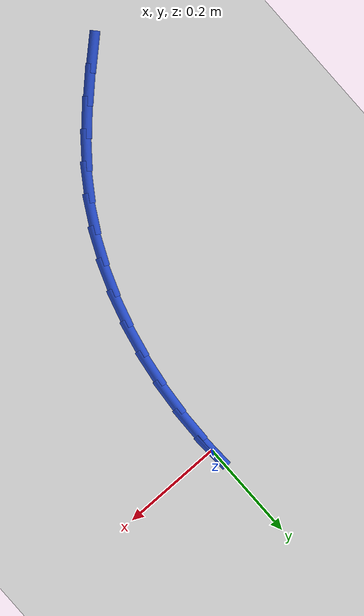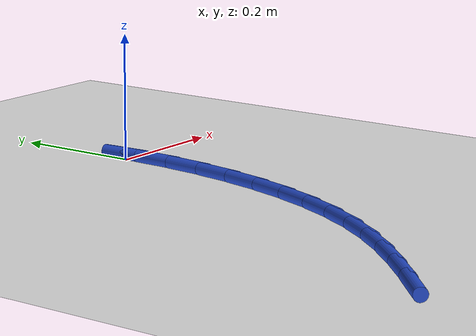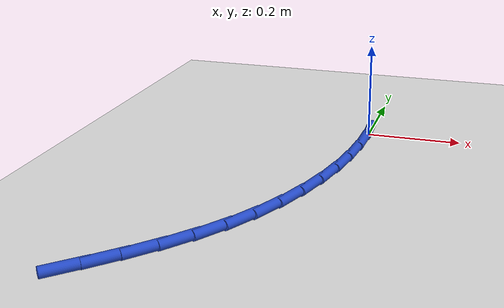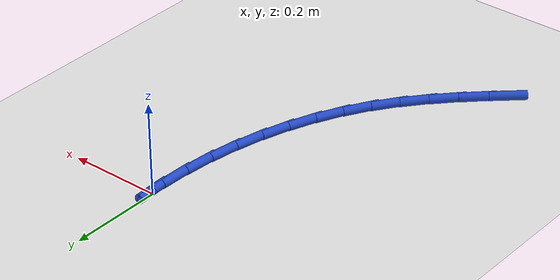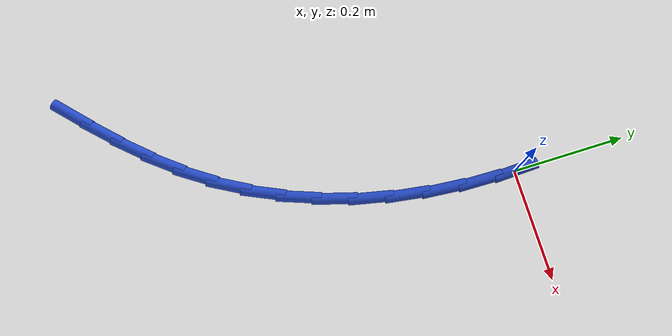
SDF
<sdf version="1.6">
 <world name="default">
  <model name="ground_plane">
   <static>1</static>
   <link name="link">
    <collision name="collision">
     <geometry><plane><normal>0 0 1</normal><size>100 100</size></plane></geometry>
     <surface><friction><ode><mu>100</mu><mu2>50</mu2></ode></friction></surface>
    </collision>
    <visual name="visual">
     <cast_shadows>0</cast_shadows>
     <geometry><plane><normal>0 0 1</normal><size>100 100</size></plane></geometry>
     <material>
      <script><uri>file://media/materials/scripts/gazebo.material</uri><name>Gazebo/WhiteGlow</name></script>
     </material>
    </visual>
   </link>
  </model>
  <model name="line">
   <link name="link_0">
    <pose>1.734723475976807e-17 -2.7755575615628914e-17 0.01 0 1.57 -1.5322963664599498</pose>
    <collision name="collision">
     <geometry><cylinder><radius>0.01</radius><length>0.08</length></cylinder></geometry>
    </collision>
    <visual name="visual">
     <material>
      <script><name>Gazebo/Blue</name><uri>file://media/materials/scripts/gazebo.material</uri></script>
     </material>
     <geometry><cylinder><radius>0.01</radius><length>0.08</length></cylinder></geometry>
    </visual>
   </link>
   <link name="link_107">
    <pose>-0.3272740526769875 -0.712897528395812 0.01 0 1.57 0.7447495851365742</pose>
    <collision name="collision">
     <geometry><cylinder><radius>0.01</radius><length>0.08</length></cylinder></geometry>
    </collision>
    <visual name="visual">
     <material>
      <script><name>Gazebo/Blue</name><uri>file://media/materials/scripts/gazebo.material</uri></script>
     </material>
     <geometry><cylinder><radius>0.01</radius><length>0.08</length></cylinder></geometry>
    </visual>
   </link>
   <link name="link_108">
    <pose>-0.2813850325737732 -0.6705953316031419 0.01 0 1.57 0.7797054352262357</pose>
    <collision name="collision">
     <geometry><cylinder><radius>0.01</radius><length>0.08</length></cylinder></geometry>
    </collision>
    <visual name="visual">
     <material>
      <script><name>Gazebo/Blue</name><uri>file://media/materials/scripts/gazebo.material</uri></script>
     </material>
     <geometry><cylinder><radius>0.01</radius><length>0.08</length></cylinder></geometry>
    </visual>
   </link>
   <link name="link_109">
    <pose>-0.2375347860931985 -0.6272415194862755 0.01 0 1.57 0.8296227773137083</pose>
    <collision name="collision">
     <geometry><cylinder><radius>0.01</radius><length>0.08</length></cylinder></geometry>
    </collision>
    <visual name="visual">
     <material>
      <script><name>Gazebo/Blue</name><uri>file://media/materials/scripts/gazebo.material</uri></script>
     </material>
     <geometry><cylinder><radius>0.01</radius><length>0.08</length></cylinder></geometry>
    </visual>
   </link>
   <link name="link_110">
    <pose>-0.19632217204593447 -0.5822124100693453 0.01 0 1.57 0.8945928540141777</pose>
    <collision name="collision">
     <geometry><cylinder><radius>0.01</radius><length>0.08</length></cylinder></geometry>
    </collision>
    <visual name="visual">
     <material>
      <script><name>Gazebo/Blue</name><uri>file://media/materials/scripts/gazebo.material</uri></script>
     </material>
     <geometry><cylinder><radius>0.01</radius><length>0.08</length></cylinder></geometry>
    </visual>
   </link>
   <link name="link_111">
    <pose>-0.15834604924265266 -0.5348843213764846 0.01 0 1.57 0.9739434673717997</pose>
    <collision name="collision">
     <geometry><cylinder><radius>0.01</radius><length>0.08</length></cylinder></geometry>
    </collision>
    <visual name="visual">
     <material>
      <script><name>Gazebo/Blue</name><uri>file://media/materials/scripts/gazebo.material</uri></script>
     </material>
     <geometry><cylinder><radius>0.01</radius><length>0.08</length></cylinder></geometry>
    </visual>
   </link>
   <link name="link_112">
    <pose>-0.12420242406817464 -0.48463812626543457 0.01 0 1.57 1.0600519509309987</pose>
    <collision name="collision">
     <geometry><cylinder><radius>0.01</radius><length>0.08</length></cylinder></geometry>
    </collision>
    <visual name="visual">
     <material>
      <script><name>Gazebo/Blue</name><uri>file://media/materials/scripts/gazebo.material</uri></script>
     </material>
     <geometry><cylinder><radius>0.01</radius><length>0.08</length></cylinder></geometry>
    </visual>
   </link>
   <link name="link_113">
    <pose>-0.09426474623401086 -0.4312100823327349 0.01 0 1.57 1.1418218305111965</pose>
    <collision name="collision">
     <geometry><cylinder><radius>0.01</radius><length>0.08</length></cylinder></geometry>
    </collision>
    <visual name="visual">
     <material>
      <script><name>Gazebo/Blue</name><uri>file://media/materials/scripts/gazebo.material</uri></script>
     </material>
     <geometry><cylinder><radius>0.01</radius><length>0.08</length></cylinder></geometry>
    </visual>
   </link>
   <link name="link_114">
    <pose>-0.0685281590148473 -0.3749405375049693 0.01 0 1.57 1.2186099193789448</pose>
    <collision name="collision">
     <geometry><cylinder><radius>0.01</radius><length>0.08</length></cylinder></geometry>
    </collision>
    <visual name="visual">
     <material>
      <script><name>Gazebo/Blue</name><uri>file://media/materials/scripts/gazebo.material</uri></script>
     </material>
     <geometry><cylinder><radius>0.01</radius><length>0.08</length></cylinder></geometry>
    </visual>
   </link>
   <link name="link_115">
    <pose>-0.04695102779256096 -0.31622856767960145 0.01 0 1.57 1.2909657648253834</pose>
    <collision name="collision">
     <geometry><cylinder><radius>0.01</radius><length>0.08</length></cylinder></geometry>
    </collision>
    <visual name="visual">
     <material>
      <script><name>Gazebo/Blue</name><uri>file://media/materials/scripts/gazebo.material</uri></script>
     </material>
     <geometry><cylinder><radius>0.01</radius><length>0.08</length></cylinder></geometry>
    </visual>
   </link>
   <link name="link_116">
    <pose>-0.02949171794902976 -0.2554732487540973 0.01 0 1.57 1.3595224760138251</pose>
    <collision name="collision">
     <geometry><cylinder><radius>0.01</radius><length>0.08</length></cylinder></geometry>
    </collision>
    <visual name="visual">
     <material>
      <script><name>Gazebo/Blue</name><uri>file://media/materials/scripts/gazebo.material</uri></script>
     </material>
     <geometry><cylinder><radius>0.01</radius><length>0.08</length></cylinder></geometry>
    </visual>
   </link>
   <link name="link_117">
    <pose>-0.016108594866130747 -0.1930736566259209 0.01 0 1.57 1.4249525862822738</pose>
    <collision name="collision">
     <geometry><cylinder><radius>0.01</radius><length>0.08</length></cylinder></geometry>
    </collision>
    <visual name="visual">
     <material>
      <script><name>Gazebo/Blue</name><uri>file://media/materials/scripts/gazebo.material</uri></script>
     </material>
     <geometry><cylinder><radius>0.01</radius><length>0.08</length></cylinder></geometry>
    </visual>
   </link>
   <link name="link_118">
    <pose>-0.006760023925741202 -0.12942886719253624 0.01 0 1.57 1.4879413583918828</pose>
    <collision name="collision">
     <geometry><cylinder><radius>0.01</radius><length>0.08</length></cylinder></geometry>
    </collision>
    <visual name="visual">
     <material>
      <script><name>Gazebo/Blue</name><uri>file://media/materials/scripts/gazebo.material</uri></script>
     </material>
     <geometry><cylinder><radius>0.01</radius><length>0.08</length></cylinder></geometry>
    </visual>
   </link>
   <link name="link_119">
    <pose>-0.0014043705097384496 -0.06493795635140717 0.01 0 1.57 1.549173354510372</pose>
    <collision name="collision">
     <geometry><cylinder><radius>0.01</radius><length>0.08</length></cylinder></geometry>
    </collision>
    <visual name="visual">
     <material>
      <script><name>Gazebo/Blue</name><uri>file://media/materials/scripts/gazebo.material</uri></script>
     </material>
     <geometry><cylinder><radius>0.01</radius><length>0.08</length></cylinder></geometry>
    </visual>
   </link>
   <link name="link_120">
    <pose>4.5102810375396984e-17 2.0816681711721685e-16 0.01 0 1.57 -1.532264325536036</pose>
    <collision name="collision">
     <geometry><cylinder><radius>0.01</radius><length>0.08</length></cylinder></geometry>
    </collision>
    <visual name="visual">
     <material>
      <script><name>Gazebo/Blue</name><uri>file://media/materials/scripts/gazebo.material</uri></script>
     </material>
     <geometry><cylinder><radius>0.01</radius><length>0.08</length></cylinder></geometry>
    </visual>
   </link>
  </model>
 </world>
</sdf>
